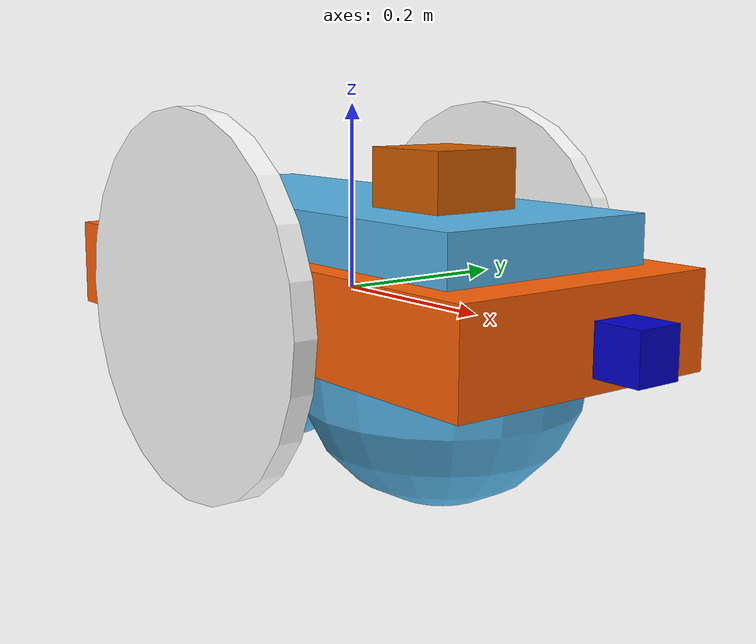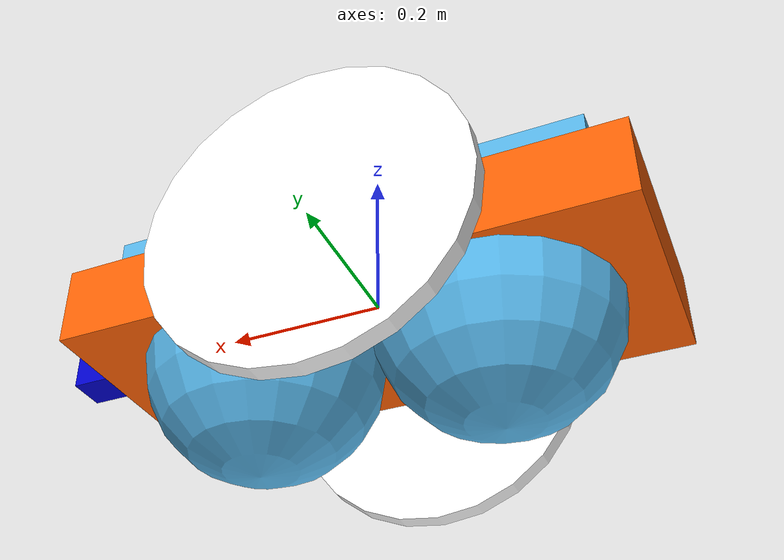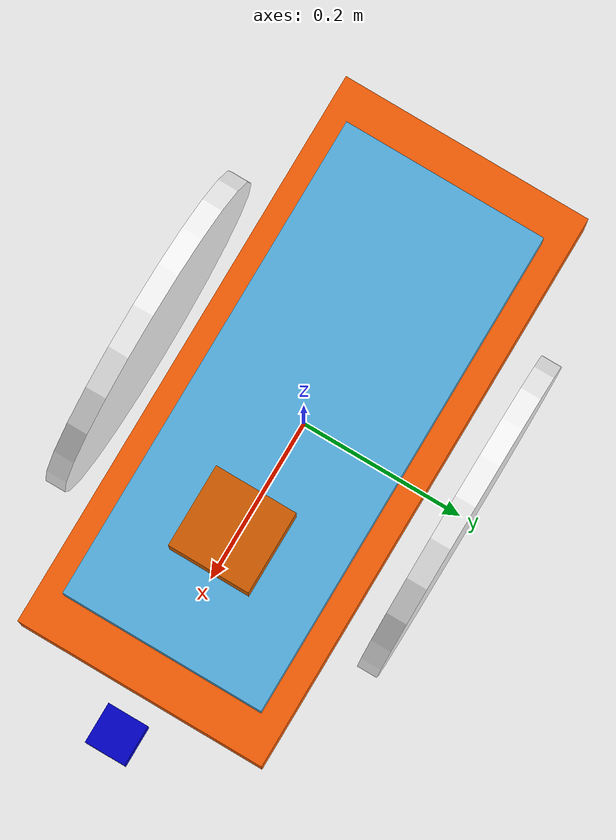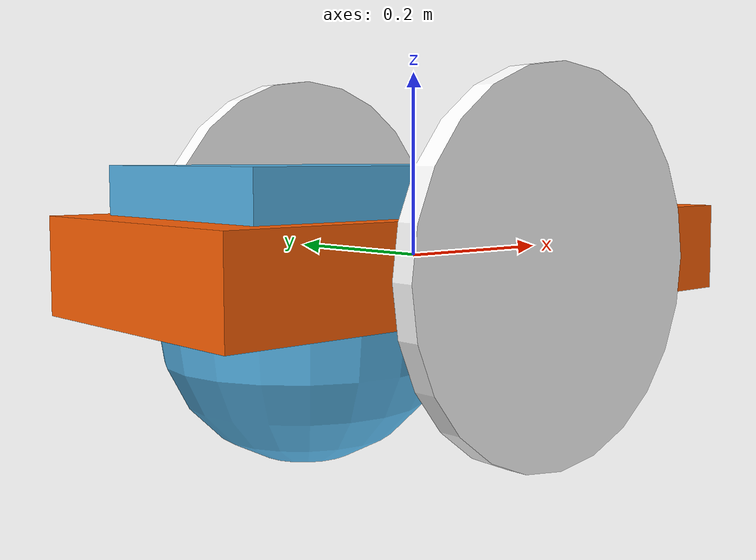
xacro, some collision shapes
<?xml version='1.0'?>

<robot name="udacity_bot" xmlns:xacro="http://www.ros.org/wiki/xacro">

  <xacro:include filename="$(find udacity_bot)/urdf/udacity_bot.gazebo" />

  <material name="white">
    <color rgba="1 1 1 1"/>
  </material>

 <material name="blue">
    <color rgba="0 0 0.8 1"/>
  </material>

<material name="orange">
    <color rgba="1 0.38 0.02 1"/>
  </material>

  <link name="robot_footprint"></link>

  <joint name="robot_footprint_joint" type="fixed">
    <origin xyz="0 0 0" rpy="0 0 0" />
    <parent link="robot_footprint"/>
    <child link="chassis" />
  </joint>

  <link name='chassis'>
    <pose>0 0 0.1 0 0 0</pose>

    <inertial>
      <mass value="15.0"/>
      <origin xyz="0.0 0 0" rpy=" 0 0 0"/>
      <inertia
          ixx="0.1" ixy="0" ixz="0"
          iyy="0.1" iyz="0"
          izz="0.1"
      />
    </inertial>

    <collision name='collision'>
      <origin xyz="0 0 0" rpy=" 0 0 0"/>
      <geometry>
        <box size=".7 .31 .1"/>
      </geometry>
    </collision>

    <visual name='chassis_visual'>
      <origin xyz="0 0 0" rpy=" 0 0 0"/>
      <geometry>
        <box size=".7 .31 .1"/>
      </geometry>
      <material name="orange"/>
    </visual>

    <collision name='back_caster_collision'>
      <origin xyz="-0.15 0 -0.05" rpy=" 0 0 0"/>
      <geometry>
        <sphere radius="0.14988"/>
      </geometry>
    </collision>

    <visual name='back_caster_visual'>
      <origin xyz="-0.15 0 -0.05" rpy=" 0 0 0"/>
      <geometry>
        <sphere radius="0.15"/>
      </geometry>
    </visual>

    <collision name='front_caster_collision'>
      <origin xyz="0.15 0 -0.05" rpy=" 0 0 0"/>
      <geometry>
        <sphere radius="0.149888"/>
      </geometry>
    </collision>

    <visual name='front_caster_visual'>
      <origin xyz="0.15 0 -0.05" rpy=" 0 0 0"/>
      <geometry>
        <sphere radius="0.15"/>
      </geometry>
    </visual>

   <collision name='top_layer'>
    <origin xyz="0 0 0.05" rpy="0 0 0"/>
     <geometry>
       <box size=".6 .25 .1" />
     </geometry>
   </collision>

   <visual name='top_layer_visual'>
     <origin xyz="0 0 0.05" rpy="0 0 0"/>
     <geometry>
       <box size=".6 .25 .1" />
     </geometry>
   </visual>

  </link>

  <link name='left_wheel'>

    <inertial>
      <mass value="5.0"/>
      <origin xyz="0.0 0 0" rpy=" 0 0 0"/>
      <inertia
          ixx="0.1" ixy="0" ixz="0"
          iyy="0.1" iyz="0"
          izz="0.1"
      />
    </inertial>

    <collision name='left_wheel_collision'>
      <origin xyz="0 0 0" rpy=" 0 1.5707 1.5707"/>
      <geometry>
        <cylinder radius="0.2" length="0.025"/>
      </geometry>
    </collision>

    <visual name='left_wheel_visual'>
      <origin xyz="0 0 0" rpy=" 0 1.5707 1.5707"/>
      <geometry>
        <cylinder radius="0.2" length="0.025"/>
      </geometry>
      <material name="white"/>
    </visual>

  </link>

  <joint type="continuous" name="left_wheel_hinge">
    <origin xyz="0 0.2 0" rpy="0 0 0"/>
    <child link="left_wheel"/>
    <parent link="chassis"/>
    <axis xyz="0 1 0" rpy="0 0 0"/>
    <limit effort="10000" velocity="1000"/>
    <dynamics damping="1.0" friction="1.0"/>
  </joint>

  <link name='right_wheel'>

    <inertial>
      <mass value="5.0"/>
      <origin xyz="0.0 0 0" rpy=" 0 0 0"/>
      <inertia
          ixx="0.1" ixy="0" ixz="0"
          iyy="0.1" iyz="0"
          izz="0.1"
      />
    </inertial>

    <collision name='right_wheel_collision'>
      <origin xyz="0 0 0" rpy=" 0 1.5707 1.5707"/>
      <geometry>
        <cylinder radius="0.2" length="0.025"/>
      </geometry>
    </collision>

    <visual name='right_wheel_visual'>
      <origin xyz="0 0 0" rpy=" 0 1.5707 1.5707"/>
      <geometry>
        <cylinder radius="0.2" length="0.025"/>
      </geometry>
      <material name="white"/>

   </visual>

  </link>

  <joint type="continuous" name="right_wheel_hinge">
    <origin xyz="0 -0.2 0" rpy="0 0 0"/>
    <child link="right_wheel"/>
    <parent link="chassis"/>
    <axis xyz="0 1 0" rpy="0 0 0"/>
    <limit effort="10000" velocity="1000"/>
    <dynamics damping="1.0" friction="1.0"/>
  </joint>

  <link name='camera'>

    <inertial>
      <mass value="0.1"/>
      <origin xyz="0 0 0" rpy=" 0 0 0"/>
      <inertia
          ixx="1e-6" ixy="0" ixz="0"
          iyy="1e-6" iyz="0"
          izz="1e-6"
      />
    </inertial>

   <collision name='camera_collision'>
      <origin xyz="0.1 0 0" rpy=" 0 0 0"/>
      <geometry>
        <box size="0.05 0.05 0.05" />
      </geometry>
    </collision>

    <visual name='camera_visual'>
      <origin xyz="0.1 0 0" rpy=" 0 0 0"/>
      <geometry>
        <box size="0.05 0.05 0.05" />
      </geometry>
      <material name="blue"/>
   </visual>

  </link>

  <joint type="fixed" name="camera_joint">
    <origin xyz="0.3 0 0" rpy="0 0 0"/>
    <child link="camera"/>
    <parent link="chassis"/>
    <axis xyz="0 0 0" rpy="0 0 0"/>
    <limit effort="10000" velocity="1000"/>
    <dynamics damping="1.0" friction="1.0"/>
  </joint>

  <link name='hokuyo'>

    <inertial>
      <mass value="0.1"/>
      <origin xyz="0.0 0 0" rpy=" 0 0 0"/>
      <inertia
          ixx="1e-6" ixy="0" ixz="0"
          iyy="1e-6" iyz="0"
          izz="1e-6"
      />
    </inertial>

    <collision name='hokuyo_collision'>
      <origin xyz="0 0 0" rpy=" 0 0 0"/>
      <geometry>
        <box size="0.1 0.1 0.1" />
      </geometry>
    </collision>

    <visual name='hokuyo_visual'>
      <origin xyz="0 0 0" rpy=" 0 0 0"/>
      <geometry>
        <mesh filename="package://udacity_bot/meshes/hokuyo.dae" />
      </geometry>
     </visual>

  </link>

 <joint type="fixed" name="hokuyo_joint">
    <origin xyz="0.15 0 0.11" rpy="0 0 0"/>
    <child link="hokuyo"/>
    <parent link="chassis"/>
    <axis xyz="0 0 0" rpy="0 0 0"/>
    <limit effort="10000" velocity="1000"/>
    <dynamics damping="1.0" friction="1.0"/>
  </joint>

</robot>
